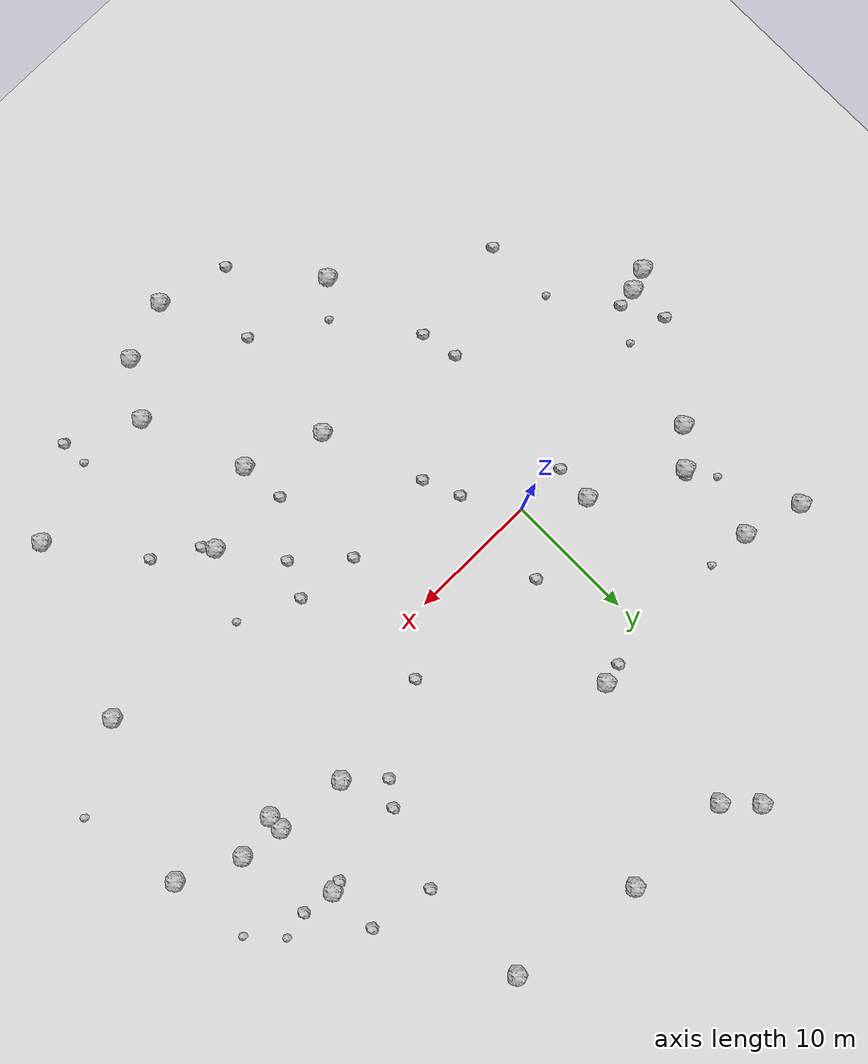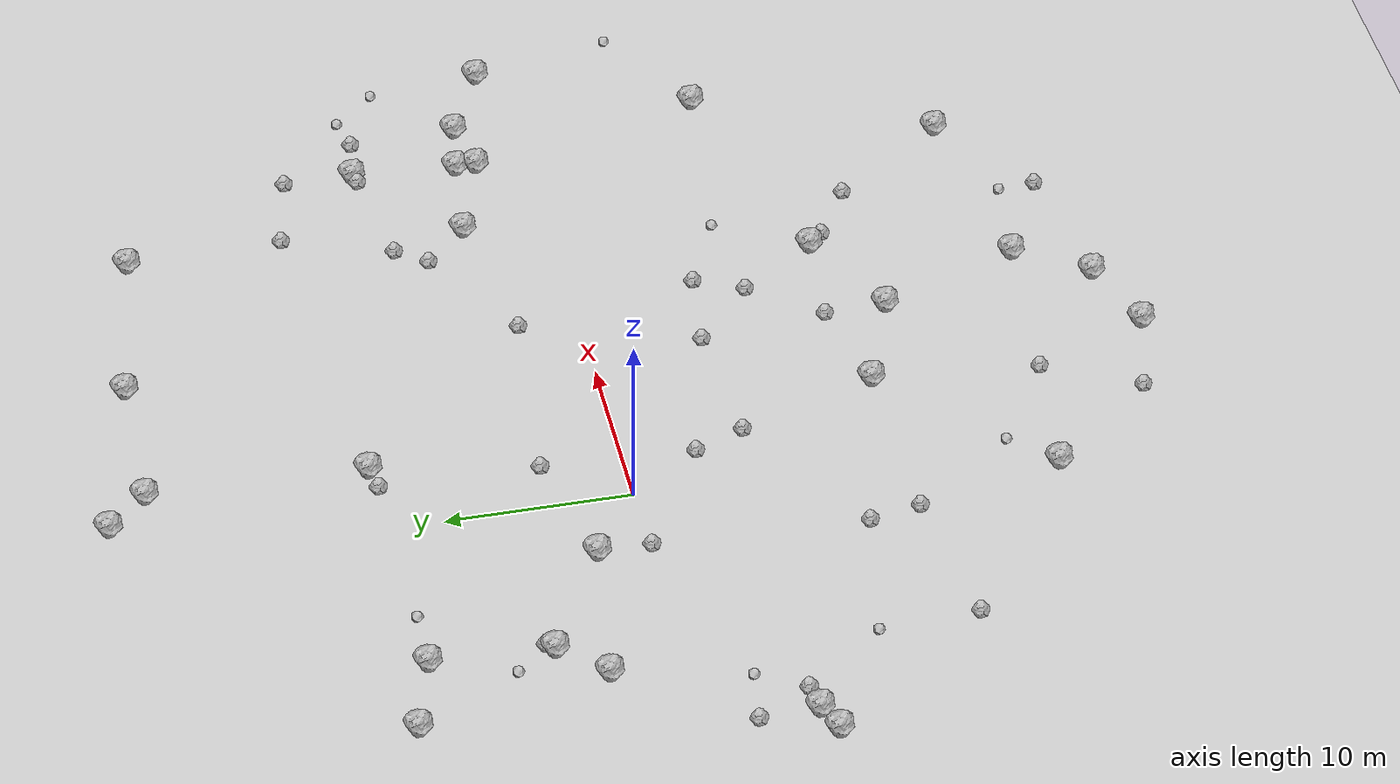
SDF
<sdf version="1.6">
 <world name="default">
  <include><uri>model://custom_ground</uri></include>
  <include><uri>model://sun</uri></include>
  <model name="rock1_0_0">
   <include><uri>model://rock1</uri><pose>-18.956871488916807 -6.428709225694224 0.5 0 0 0</pose></include>
  </model>
  <model name="rock1_0_1">
   <include><uri>model://rock1</uri><pose>-12.739056822076225 3.9244362627067773 0.5 0 0 0</pose></include>
  </model>
  <model name="rock1_0_2">
   <include><uri>model://rock1</uri><pose>-14.651029741913842 14.008849514167302 0.5 0 0 0</pose></include>
  </model>
  <model name="rock1_0_3">
   <include><uri>model://rock1</uri><pose>-17.350839913043014 -5.818428811001773 0.5 0 0 0</pose></include>
  </model>
  <model name="rock1_0_4">
   <include><uri>model://rock1</uri><pose>28.61463034515831 3.0933515747911073 0.5 0 0 0</pose></include>
  </model>
  <model name="rock1_0_5">
   <include><uri>model://rock1</uri><pose>29.07358258243754 10.011992388678479 0.5 0 0 0</pose></include>
  </model>
  <model name="rock1_0_6">
   <include><uri>model://rock1</uri><pose>8.205711523361401 -29.66538347035327 0.5 0 0 0</pose></include>
  </model>
  <model name="rock1_0_7">
   <include><uri>model://rock1</uri><pose>-10.197315172318044 12.736563768273534 0.5 0 0 0</pose></include>
  </model>
  <model name="rock1_0_8">
   <include><uri>model://rock1</uri><pose>5.076249175171839 24.956578424120515 0.5 0 0 0</pose></include>
  </model>
  <model name="rock1_0_9">
   <include><uri>model://rock1</uri><pose>6.4725363788788 -14.25711658685665 0.5 0 0 0</pose></include>
  </model>
  <model name="rock1_0_10">
   <include><uri>model://rock1</uri><pose>23.193702439122376 4.80752211604414 0.5 0 0 0</pose></include>
  </model>
  <model name="rock1_0_11">
   <include><uri>model://rock1</uri><pose>31.933968568541175 3.743928838502981 0.5 0 0 0</pose></include>
  </model>
  <model name="rock1_0_12">
   <include><uri>model://rock1</uri><pose>4.71982629203756 13.233136602800066 0.5 0 0 0</pose></include>
  </model>
  <model name="rock1_0_13">
   <include><uri>model://rock1</uri><pose>31.7997710563944 -9.89144301933701 0.5 0 0 0</pose></include>
  </model>
  <model name="rock1_0_14">
   <include><uri>model://rock1</uri><pose>12.690494936209404 -28.13307768045738 0.5 0 0 0</pose></include>
  </model>
  <model name="rock1_0_15">
   <include><uri>model://rock1</uri><pose>15.220255969352984 -24.27283025609924 0.5 0 0 0</pose></include>
  </model>
  <model name="rock1_0_16">
   <include><uri>model://rock1</uri><pose>18.006104367211314 -13.565780775570197 0.5 0 0 0</pose></include>
  </model>
  <model name="rock1_0_17">
   <include><uri>model://rock1</uri><pose>2.9504576619615044 27.12081303290688 0.5 0 0 0</pose></include>
  </model>
  <model name="rock1_0_18">
   <include><uri>model://rock1</uri><pose>26.684370083592505 -22.7862996651685 0.5 0 0 0</pose></include>
  </model>
  <model name="rock1_0_19">
   <include><uri>model://rock1</uri><pose>23.893616123760317 23.342005823988693 0.5 0 0 0</pose></include>
  </model>
  <model name="rock1_0_20">
   <include><uri>model://rock1</uri><pose>-1.9208639161137882 -22.334175429192157 0.5 0 0 0</pose></include>
  </model>
  <model name="rock1_0_21">
   <include><uri>model://rock1</uri><pose>13.563291899688544 24.863216508796846 0.5 0 0 0</pose></include>
  </model>
  <model name="rock1_0_22">
   <include><uri>model://rock1</uri><pose>36.58486282770654 1.640152870975843 0.5 0 0 0</pose></include>
  </model>
  <model name="rock1_0_23">
   <include><uri>model://rock1</uri><pose>-3.910559886144668 2.7650536570483624 0.5 0 0 0</pose></include>
  </model>
  <model name="rock1_0_24">
   <include><uri>model://rock1</uri><pose>12.279432675184466 -16.43591662336177 0.5 0 0 0</pose></include>
  </model>
  <model name="rock1_0_25">
   <include><uri>model://rock1</uri><pose>28.624722884507385 4.236336065654726 0.5 0 0 0</pose></include>
  </model>
  <model name="rock1_0_26">
   <include><uri>model://rock1</uri><pose>-10.503713354551802 6.2866988215221795 0.5 0 0 0</pose></include>
  </model>
  <model name="rock2_0_0">
   <include><uri>model://rock2</uri><pose>28.88343804604058 13.855609834512578 0.3 0 0 0</pose></include>
  </model>
  <model name="rock2_0_1">
   <include><uri>model://rock2</uri><pose>2.54162934104626 -3.8353325423018383 0.3 0 0 0</pose></include>
  </model>
  <model name="rock2_0_2">
   <include><uri>model://rock2</uri><pose>16.09632020138367 -6.612064615897516 0.3 0 0 0</pose></include>
  </model>
  <model name="rock2_0_3">
   <include><uri>model://rock2</uri><pose>-10.263136580743195 6.698756535760083 0.3 0 0 0</pose></include>
  </model>
  <model name="rock2_0_4">
   <include><uri>model://rock2</uri><pose>14.89184364164123 -9.263891733451999 0.3 0 0 0</pose></include>
  </model>
  <model name="rock2_0_5">
   <include><uri>model://rock2</uri><pose>-17.632594460740755 -2.661674428209718 0.3 0 0 0</pose></include>
  </model>
  <model name="rock2_0_6">
   <include><uri>model://rock2</uri><pose>31.586245678677457 9.656542214520641 0.3 0 0 0</pose></include>
  </model>
  <model name="rock2_0_7">
   <include><uri>model://rock2</uri><pose>-4.562963465144721 -11.529065641606334 0.3 0 0 0</pose></include>
  </model>
  <model name="rock2_0_8">
   <include><uri>model://rock2</uri><pose>11.285015316411766 -6.063052668293064 0.3 0 0 0</pose></include>
  </model>
  <model name="rock2_0_9">
   <include><uri>model://rock2</uri><pose>-12.334760793916663 -15.395534032112314 0.3 0 0 0</pose></include>
  </model>
  <model name="rock2_0_10">
   <include><uri>model://rock2</uri><pose>28.244441280824255 9.840654188680723 0.3 0 0 0</pose></include>
  </model>
  <model name="rock2_0_11">
   <include><uri>model://rock2</uri><pose>3.69449859179597 -6.6037190689728575 0.3 0 0 0</pose></include>
  </model>
  <model name="rock2_0_12">
   <include><uri>model://rock2</uri><pose>21.92123272652519 -16.36957495661587 0.3 0 0 0</pose></include>
  </model>
  <model name="rock2_0_13">
   <include><uri>model://rock2</uri><pose>2.935376198418602 4.406290444283847 0.3 0 0 0</pose></include>
  </model>
  <model name="rock2_0_14">
   <include><uri>model://rock2</uri><pose>-15.963874130123916 -5.595630352375601 0.3 0 0 0</pose></include>
  </model>
  <model name="rock2_0_15">
   <include><uri>model://rock2</uri><pose>20.527966048003677 -27.001881123970076 0.3 0 0 0</pose></include>
  </model>
  <model name="rock2_0_16">
   <include><uri>model://rock2</uri><pose>11.99645686592984 -13.036016916315997 0.3 0 0 0</pose></include>
  </model>
  <model name="rock2_0_17">
   <include><uri>model://rock2</uri><pose>-3.99903922684166 -14.332747624842867 0.3 0 0 0</pose></include>
  </model>
  <model name="rock2_0_18">
   <include><uri>model://rock2</uri><pose>2.846246576275412 -28.284096120364012 0.3 0 0 0</pose></include>
  </model>
  <model name="rock2_0_19">
   <include><uri>model://rock2</uri><pose>24.008787917906673 14.793661157309494 0.3 0 0 0</pose></include>
  </model>
  <model name="rock2_0_20">
   <include><uri>model://rock2</uri><pose>21.890216872228308 8.856240159612518 0.3 0 0 0</pose></include>
  </model>
  <model name="rock2_0_21">
   <include><uri>model://rock2</uri><pose>-4.078223687919049 -0.08104730173268848 0.3 0 0 0</pose></include>
  </model>
  <model name="rock2_0_22">
   <include><uri>model://rock2</uri><pose>18.643526739923843 -14.388556801878332 0.3 0 0 0</pose></include>
  </model>
  <model name="rock2_0_23">
   <include><uri>model://rock2</uri><pose>3.092056146760296 12.95836408187467 0.3 0 0 0</pose></include>
  </model>
  <model name="rock2_0_24">
   <include><uri>model://rock2</uri><pose>14.291389601213012 3.3978748138342354 0.3 0 0 0</pose></include>
  </model>
  <model name="rock2_0_25">
   <include><uri>model://rock2</uri><pose>5.4206761025711785 -23.263212242439337 0.3 0 0 0</pose></include>
  </model>
  <model name="rock2_0_26">
   <include><uri>model://rock2</uri><pose>20.64468690396808 7.161207256626284 0.3 0 0 0</pose></include>
  </model>
  <model name="rock3_0_0">
   <include><uri>model://rock3</uri><pose>-11.891391106129044 8.381856344635317 0.2 0 0 0</pose></include>
  </model>
  <model name="rock3_0_1">
   <include><uri>model://rock3</uri><pose>33.68153239187664 10.068843618196354 0.2 0 0 0</pose></include>
  </model>
  <model name="rock3_0_2">
   <include><uri>model://rock3</uri><pose>20.61936887816387 -8.698365923421377 0.2 0 0 0</pose></include>
  </model>
  <model name="rock3_0_3">
   <include><uri>model://rock3</uri><pose>-6.9100722871553835 12.650300579303313 0.2 0 0 0</pose></include>
  </model>
  <model name="rock3_0_4">
   <include><uri>model://rock3</uri><pose>-12.577237972975157 -10.066642130188619 0.2 0 0 0</pose></include>
  </model>
  <model name="rock3_0_5">
   <include><uri>model://rock3</uri><pose>0.15678388640674967 -20.074685645094082 0.2 0 0 0</pose></include>
  </model>
  <model name="rock3_0_6">
   <include><uri>model://rock3</uri><pose>20.456097044789132 -25.00657634844815 0.2 0 0 0</pose></include>
  </model>
  <model name="rock3_0_7">
   <include><uri>model://rock3</uri><pose>38.132963039470624 -6.202023026684316 0.2 0 0 0</pose></include>
  </model>
  <model name="rock3_0_8">
   <include><uri>model://rock3</uri><pose>35.82173171809267 7.785353042191517 0.2 0 0 0</pose></include>
  </model>
  <model name="rock3_0_9">
   <include><uri>model://rock3</uri><pose>-14.460741840449241 -3.1412369539345804 0.2 0 0 0</pose></include>
  </model>
 </world>
</sdf>
